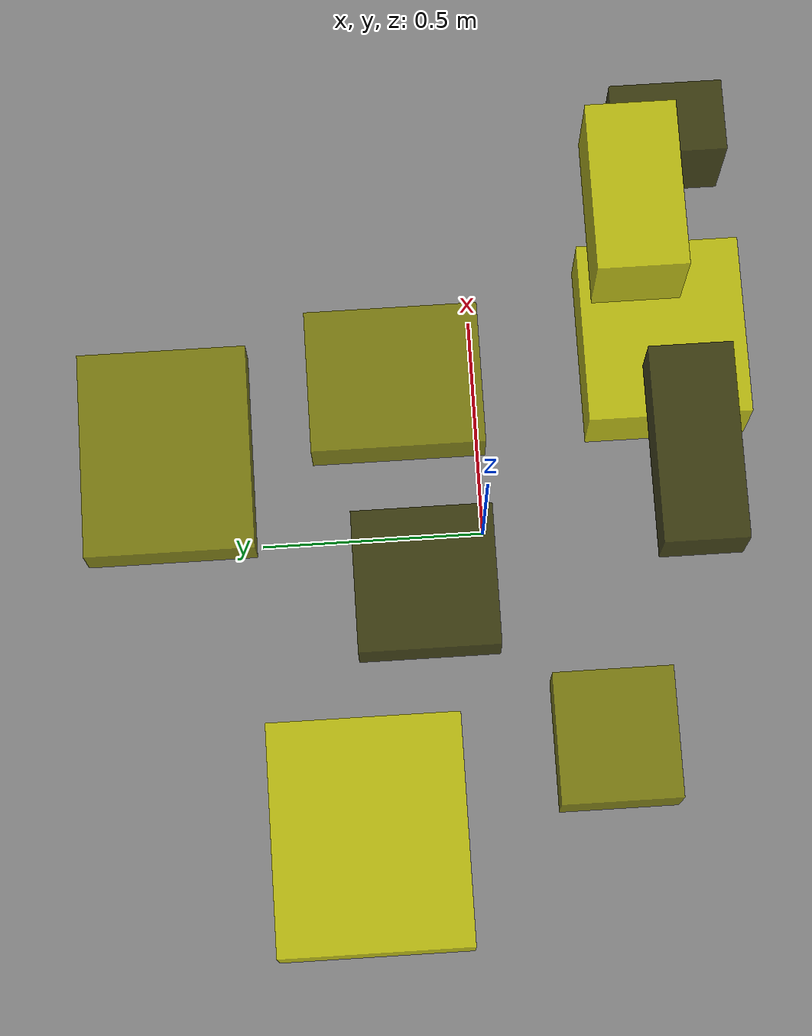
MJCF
<?xml version="1.0"?>
<mujoco model="obstacle_scene">
  <compiler angle="radian" coordinate="local"/>
  <option timestep="0.001" gravity="0 0 -9.81"/>

  <asset>
    <material name="obstacle_mat" rgba="0.8 0.8 0.0 0.8"/>
    <material name="ground_mat" rgba="0.5 0.5 0.5 1"/>
  </asset>

  <worldbody>
    <!-- Ground plane -->
    <geom name="ground" type="plane" size="3 3 0.1" material="ground_mat"/>

    <!-- Obstacles -->
    <body name="obstacle_0" pos="-0.184537 0.143514 0.417792">
      <geom name="obs_0" type="box" size="0.150608 0.149493 0.061436" rgba="0.2 0.2 0.0 0.8"/>
    </body>
    <body name="obstacle_1" pos="-0.593682 -0.197225 0.837730">
      <geom name="obs_1" type="box" size="0.126855 0.116039 0.061491" rgba="0.5 0.5 0.0 0.8"/>
    </body>
    <body name="obstacle_2" pos="0.533927 -0.332084 0.697081">
      <geom name="obs_2" type="box" size="0.175720 0.093270 0.116678" rgba="0.8 0.8 0.0 0.8"/>
    </body>
    <body name="obstacle_3" pos="0.823009 -0.454360 0.289125">
      <geom name="obs_3" type="box" size="0.080422 0.123972 0.123945" rgba="0.2 0.2 0.0 0.8"/>
    </body>
    <body name="obstacle_4" pos="0.265845 0.182831 0.367993">
      <geom name="obs_4" type="box" size="0.154621 0.186699 0.062317" rgba="0.5 0.5 0.0 0.8"/>
    </body>
    <body name="obstacle_5" pos="-0.793852 0.278967 1.270316">
      <geom name="obs_5" type="box" size="0.203267 0.170842 0.052897" rgba="0.8 0.8 0.0 0.8"/>
    </body>
    <body name="obstacle_6" pos="-0.009691 -0.411250 0.740858">
      <geom name="obs_6" type="box" size="0.200757 0.084967 0.071794" rgba="0.2 0.2 0.0 0.8"/>
    </body>
    <body name="obstacle_7" pos="0.015920 0.640163 0.846637">
      <geom name="obs_7" type="box" size="0.202882 0.165606 0.048895" rgba="0.5 0.5 0.0 0.8"/>
    </body>
    <body name="obstacle_8" pos="0.302690 -0.389894 0.457114">
      <geom name="obs_8" type="box" size="0.190320 0.170896 0.093337" rgba="0.8 0.8 0.0 0.8"/>
    </body>
  </worldbody>
</mujoco>
